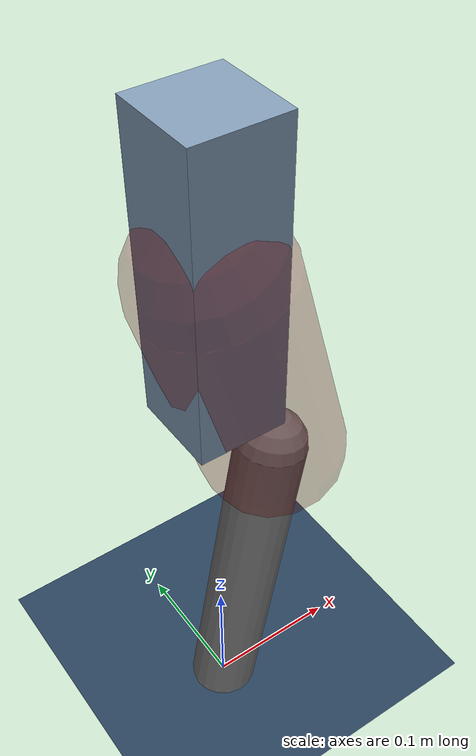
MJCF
<mujoco model="Hopper2D">
	<compiler inertiafromgeom="true" angle="radian" />
	<option timestep="0.001" integrator="implicit" cone="elliptic" solver="Newton" tolerance="1e-10" />

	<default>
		<geom contype="1" conaffinity="1" condim="3" friction="2 0.005 0.0001" solref="0.005 1" />
		<joint limited="true" damping="0.1" />
	</default>

	<asset>
		<texture name="skybox" type="skybox" builtin="gradient" rgb1=".4 .6 .8" rgb2="0 0 0" width="800" height="800" />
		<texture name="grid" type="2d" builtin="checker" rgb1=".1 .2 .3" rgb2=".2 .3 .4" width="300" height="300" mark="edge" markrgb=".2 .3 .4" />
		<material name="ground" texture="grid" texrepeat="1 1" texuniform="true" reflectance="0.1" />
		<material name="leg" rgba="0.5 0.6 0.7 1" />
	</asset>

	<worldbody>

		<geom name="floor" type="plane" size="5 5 0.25" material="ground" />

		<light directional="false" diffuse="0.8 0.8 0.8" specular="0.3 0.3 0.3" pos="0 0 2" dir="0 0 -1" />
		<light mode="targetbodycom" target="base" directional="false" diffuse="0.8 0.8 0.8" specular="0.3 0.3 0.3" pos="0 0 2" dir="0 0 -1" />

		<camera name="fixed" pos="0 -2 1" xyaxes="1 0 0 0 0 1" />
		<camera name="tracking" mode="trackcom" pos="0 -3 1" />

		<body name="root" pos="0 0 0.39122465793626315">
			<joint name="slide_x" type="slide" axis="1 0 0" range="-100 100" />
			<joint name="slide_z" type="slide" axis="0 0 1" range="0 10" />

			<body name="base" pos="0 0 0">
				<geom name="torso" type="box" size="0.03 0.03 0.1" mass="1.7919999999999998" material="leg" />

				<body name="link1" pos="0 0 0" euler="0 1.2901754190878492 0">
					<joint type="hinge" axis="0 -1 0" pos="0 0 0" name="hinge1" limited="true" range="-3.14 3.14" stiffness="0" damping="0.1" />
					<geom name="thigh" type="capsule" fromto="0 0 0 0.15659026005396015 0 0" size="0.05" rgba="0.5 0 0 0.3" mass="0.6241166241295044" />

					<body name="link2" pos="0.15659026005396015 0 0" euler="0 0.4588397752790905 0">
						<joint type="hinge" axis="0 -1 0" pos="0 0 0" name="hinge2" limited="true" range="-3.14 3.14" stiffness="0" damping="0.1" />
						<geom name="shank" type="capsule" fromto="0 0 0 0.244634397882303 0 0" size="0.025" mass="0.43810751830584244" />

					</body>
				</body>
			</body>
		</body>
	</worldbody>

	<actuator>
		<motor name="torque1" joint="hinge1" ctrlrange="-35.7045613524997 35.7045613524997" ctrllimited="true" gear="1" />
		<motor name="torque2" joint="hinge2" ctrlrange="-45.33256759608567 45.33256759608567" ctrllimited="true" gear="1" />
	</actuator>
</mujoco>
